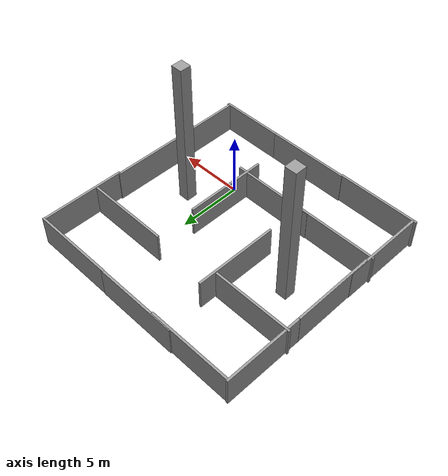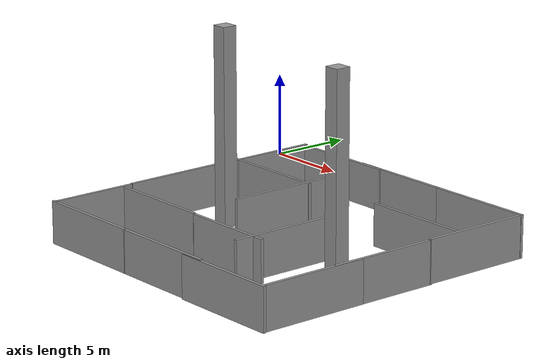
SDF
<?xml version='1.0'?>
<sdf version='1.7'>
  <model name='office1.world'>
    <link name='link_2'>
      <inertial>
        <mass>13.1278</mass>
        <inertia>
          <ixx>189.63</ixx>
          <ixy>0</ixy>
          <ixz>0</ixz>
          <iyy>189.63</iyy>
          <iyz>0</iyz>
          <izz>2.18797</izz>
        </inertia>
        <pose>0 0 0 0 -0 0</pose>
      </inertial>
      <pose>-6.1173 0.626969 0.350923 0 -0 0</pose>
      <self_collide>0</self_collide>
      <enable_wind>0</enable_wind>
      <kinematic>0</kinematic>
      <visual name='visual'>
        <pose>0 0 0 0 -0 0</pose>
        <geometry>
          <box>
            <size>1 1 13.1278</size>
          </box>
        </geometry>
        <material>
          <lighting>1</lighting>
          <script>
            <uri>file://media/materials/scripts/gazebo.material</uri>
            <name>Gazebo/Grey</name>
          </script>
          <shader type='pixel'/>
        </material>
        <transparency>0</transparency>
        <cast_shadows>1</cast_shadows>
      </visual>
      <collision name='collision'>
        <laser_retro>0</laser_retro>
        <max_contacts>10</max_contacts>
        <pose>0 0 0 0 -0 0</pose>
        <geometry>
          <box>
            <size>1 1 13.1278</size>
          </box>
        </geometry>
        <surface>
          <friction>
            <ode>
              <mu>1</mu>
              <mu2>1</mu2>
              <fdir1>0 0 0</fdir1>
              <slip1>0</slip1>
              <slip2>0</slip2>
            </ode>
            <torsional>
              <coefficient>1</coefficient>
              <patch_radius>0</patch_radius>
              <surface_radius>0</surface_radius>
              <use_patch_radius>1</use_patch_radius>
              <ode>
                <slip>0</slip>
              </ode>
            </torsional>
          </friction>
          <bounce>
            <restitution_coefficient>0</restitution_coefficient>
            <threshold>1e+06</threshold>
          </bounce>
          <contact>
            <collide_without_contact>0</collide_without_contact>
            <collide_without_contact_bitmask>1</collide_without_contact_bitmask>
            <collide_bitmask>1</collide_bitmask>
            <ode>
              <soft_cfm>0</soft_cfm>
              <soft_erp>0.2</soft_erp>
              <kp>1e+13</kp>
              <kd>1</kd>
              <max_vel>0.01</max_vel>
              <min_depth>0</min_depth>
            </ode>
            <bullet>
              <split_impulse>1</split_impulse>
              <split_impulse_penetration_threshold>-0.01</split_impulse_penetration_threshold>
              <soft_cfm>0</soft_cfm>
              <soft_erp>0.2</soft_erp>
              <kp>1e+13</kp>
              <kd>1</kd>
            </bullet>
          </contact>
        </surface>
      </collision>
    </link>
    <link name='link_3'>
      <inertial>
        <mass>13.3473</mass>
        <inertia>
          <ixx>199.264</ixx>
          <ixy>0</ixy>
          <ixz>0</ixz>
          <iyy>199.264</iyy>
          <iyz>0</iyz>
          <izz>2.22455</izz>
        </inertia>
        <pose>0 0 0 0 -0 0</pose>
      </inertial>
      <pose>6.82956 -1.30287 0.350923 0 -0 0</pose>
      <self_collide>0</self_collide>
      <enable_wind>0</enable_wind>
      <kinematic>0</kinematic>
      <visual name='visual'>
        <pose>0 0 0 0 -0 0</pose>
        <geometry>
          <box>
            <size>1 1 13.3473</size>
          </box>
        </geometry>
        <material>
          <lighting>1</lighting>
          <script>
            <uri>file://media/materials/scripts/gazebo.material</uri>
            <name>Gazebo/Grey</name>
          </script>
          <shader type='pixel'/>
        </material>
        <transparency>0</transparency>
        <cast_shadows>1</cast_shadows>
      </visual>
      <collision name='collision'>
        <laser_retro>0</laser_retro>
        <max_contacts>10</max_contacts>
        <pose>0 0 0 0 -0 0</pose>
        <geometry>
          <box>
            <size>1 1 13.3473</size>
          </box>
        </geometry>
        <surface>
          <friction>
            <ode>
              <mu>1</mu>
              <mu2>1</mu2>
              <fdir1>0 0 0</fdir1>
              <slip1>0</slip1>
              <slip2>0</slip2>
            </ode>
            <torsional>
              <coefficient>1</coefficient>
              <patch_radius>0</patch_radius>
              <surface_radius>0</surface_radius>
              <use_patch_radius>1</use_patch_radius>
              <ode>
                <slip>0</slip>
              </ode>
            </torsional>
          </friction>
          <bounce>
            <restitution_coefficient>0</restitution_coefficient>
            <threshold>1e+06</threshold>
          </bounce>
          <contact>
            <collide_without_contact>0</collide_without_contact>
            <collide_without_contact_bitmask>1</collide_without_contact_bitmask>
            <collide_bitmask>1</collide_bitmask>
            <ode>
              <soft_cfm>0</soft_cfm>
              <soft_erp>0.2</soft_erp>
              <kp>1e+13</kp>
              <kd>1</kd>
              <max_vel>0.01</max_vel>
              <min_depth>0</min_depth>
            </ode>
            <bullet>
              <split_impulse>1</split_impulse>
              <split_impulse_penetration_threshold>-0.01</split_impulse_penetration_threshold>
              <soft_cfm>0</soft_cfm>
              <soft_erp>0.2</soft_erp>
              <kp>1e+13</kp>
              <kd>1</kd>
            </bullet>
          </contact>
        </surface>
      </collision>
    </link>
    <model name='grey_wall'>
      <static>1</static>
      <link name='link'>
        <pose>0 0 1.4 0 -0 0</pose>
        <collision name='collision'>
          <geometry>
            <box>
              <size>7.5 0.2 2.8</size>
            </box>
          </geometry>
          <max_contacts>10</max_contacts>
          <surface>
            <contact>
              <ode/>
            </contact>
            <bounce/>
            <friction>
              <torsional>
                <ode/>
              </torsional>
              <ode/>
            </friction>
          </surface>
        </collision>
        <visual name='visual'>
          <cast_shadows>0</cast_shadows>
          <geometry>
            <box>
              <size>7.5 0.2 2.8</size>
            </box>
          </geometry>
          <material>
            <script>
              <uri>model://grey_wall/materials/scripts</uri>
              <uri>model://grey_wall/materials/textures</uri>
              <name>vrc/grey_wall</name>
            </script>
          </material>
        </visual>
        <self_collide>0</self_collide>
        <enable_wind>0</enable_wind>
        <kinematic>0</kinematic>
      </link>
      <pose>-5.86547 10.2545 -6.18636 0 -0 0</pose>
    </model>
    <model name='grey_wall_0'>
      <static>1</static>
      <link name='link'>
        <pose>0 0 1.4 0 -0 0</pose>
        <collision name='collision'>
          <geometry>
            <box>
              <size>7.5 0.2 2.8</size>
            </box>
          </geometry>
          <max_contacts>10</max_contacts>
          <surface>
            <contact>
              <ode/>
            </contact>
            <bounce/>
            <friction>
              <torsional>
                <ode/>
              </torsional>
              <ode/>
            </friction>
          </surface>
        </collision>
        <visual name='visual'>
          <cast_shadows>0</cast_shadows>
          <geometry>
            <box>
              <size>7.5 0.2 2.8</size>
            </box>
          </geometry>
          <material>
            <script>
              <uri>model://grey_wall/materials/scripts</uri>
              <uri>model://grey_wall/materials/textures</uri>
              <name>vrc/grey_wall</name>
            </script>
          </material>
        </visual>
        <self_collide>0</self_collide>
        <enable_wind>0</enable_wind>
        <kinematic>0</kinematic>
      </link>
      <pose>-0.359473 10.3404 -6.19557 0 -0 0</pose>
    </model>
    <model name='grey_wall_1'>
      <static>1</static>
      <link name='link'>
        <pose>0 0 1.4 0 -0 0</pose>
        <collision name='collision'>
          <geometry>
            <box>
              <size>7.5 0.2 2.8</size>
            </box>
          </geometry>
          <max_contacts>10</max_contacts>
          <surface>
            <contact>
              <ode/>
            </contact>
            <bounce/>
            <friction>
              <torsional>
                <ode/>
              </torsional>
              <ode/>
            </friction>
          </surface>
        </collision>
        <visual name='visual'>
          <cast_shadows>0</cast_shadows>
          <geometry>
            <box>
              <size>7.5 0.2 2.8</size>
            </box>
          </geometry>
          <material>
            <script>
              <uri>model://grey_wall/materials/scripts</uri>
              <uri>model://grey_wall/materials/textures</uri>
              <name>vrc/grey_wall</name>
            </script>
          </material>
        </visual>
        <self_collide>0</self_collide>
        <enable_wind>0</enable_wind>
        <kinematic>0</kinematic>
      </link>
      <pose>6.95608 10.3134 -6.18871 0 -0 0</pose>
    </model>
    <model name='grey_wall_10'>
      <static>1</static>
      <link name='link'>
        <pose>0 0 1.4 0 -0 0</pose>
        <collision name='collision'>
          <geometry>
            <box>
              <size>7.5 0.2 2.8</size>
            </box>
          </geometry>
          <max_contacts>10</max_contacts>
          <surface>
            <contact>
              <ode/>
            </contact>
            <bounce/>
            <friction>
              <torsional>
                <ode/>
              </torsional>
              <ode/>
            </friction>
          </surface>
        </collision>
        <visual name='visual'>
          <cast_shadows>0</cast_shadows>
          <geometry>
            <box>
              <size>7.5 0.2 2.8</size>
            </box>
          </geometry>
          <material>
            <script>
              <uri>model://grey_wall/materials/scripts</uri>
              <uri>model://grey_wall/materials/textures</uri>
              <name>vrc/grey_wall</name>
            </script>
          </material>
        </visual>
        <self_collide>0</self_collide>
        <enable_wind>0</enable_wind>
        <kinematic>0</kinematic>
      </link>
      <pose>6.88242 -9.91203 -6.27613 0 -0 0</pose>
    </model>
    <model name='grey_wall_11'>
      <static>1</static>
      <link name='link'>
        <pose>0 0 1.4 0 -0 0</pose>
        <collision name='collision'>
          <geometry>
            <box>
              <size>7.5 0.2 2.8</size>
            </box>
          </geometry>
          <max_contacts>10</max_contacts>
          <surface>
            <contact>
              <ode/>
            </contact>
            <bounce/>
            <friction>
              <torsional>
                <ode/>
              </torsional>
              <ode/>
            </friction>
          </surface>
        </collision>
        <visual name='visual'>
          <cast_shadows>0</cast_shadows>
          <geometry>
            <box>
              <size>7.5 0.2 2.8</size>
            </box>
          </geometry>
          <material>
            <script>
              <uri>model://grey_wall/materials/scripts</uri>
              <uri>model://grey_wall/materials/textures</uri>
              <name>vrc/grey_wall</name>
            </script>
          </material>
        </visual>
        <self_collide>0</self_collide>
        <enable_wind>0</enable_wind>
        <kinematic>0</kinematic>
      </link>
      <pose>-6.2541 4.57267 -6.1435 0 -0 0</pose>
    </model>
    <model name='grey_wall_12'>
      <static>1</static>
      <link name='link'>
        <pose>0 0 1.4 0 -0 0</pose>
        <collision name='collision'>
          <geometry>
            <box>
              <size>7.5 0.2 2.8</size>
            </box>
          </geometry>
          <max_contacts>10</max_contacts>
          <surface>
            <contact>
              <ode/>
            </contact>
            <bounce/>
            <friction>
              <torsional>
                <ode/>
              </torsional>
              <ode/>
            </friction>
          </surface>
        </collision>
        <visual name='visual'>
          <cast_shadows>0</cast_shadows>
          <geometry>
            <box>
              <size>7.5 0.2 2.8</size>
            </box>
          </geometry>
          <material>
            <script>
              <uri>model://grey_wall/materials/scripts</uri>
              <uri>model://grey_wall/materials/textures</uri>
              <name>vrc/grey_wall</name>
            </script>
          </material>
        </visual>
        <self_collide>0</self_collide>
        <enable_wind>0</enable_wind>
        <kinematic>0</kinematic>
      </link>
      <pose>-6.24152 -4.72345 -6.21922 0 -0 0</pose>
    </model>
    <model name='grey_wall_13'>
      <static>1</static>
      <link name='link'>
        <pose>0 0 1.4 0 -0 0</pose>
        <collision name='collision'>
          <geometry>
            <box>
              <size>7.5 0.2 2.8</size>
            </box>
          </geometry>
          <max_contacts>10</max_contacts>
          <surface>
            <contact>
              <ode/>
            </contact>
            <bounce/>
            <friction>
              <torsional>
                <ode/>
              </torsional>
              <ode/>
            </friction>
          </surface>
        </collision>
        <visual name='visual'>
          <cast_shadows>0</cast_shadows>
          <geometry>
            <box>
              <size>7.5 0.2 2.8</size>
            </box>
          </geometry>
          <material>
            <script>
              <uri>model://grey_wall/materials/scripts</uri>
              <uri>model://grey_wall/materials/textures</uri>
              <name>vrc/grey_wall</name>
            </script>
          </material>
        </visual>
        <self_collide>0</self_collide>
        <enable_wind>0</enable_wind>
        <kinematic>0</kinematic>
      </link>
      <pose>-2.66308 2.44192 -6.04539 0 0 1.56711</pose>
    </model>
    <model name='grey_wall_14'>
      <static>1</static>
      <link name='link'>
        <pose>0 0 1.4 0 -0 0</pose>
        <collision name='collision'>
          <geometry>
            <box>
              <size>7.5 0.2 2.8</size>
            </box>
          </geometry>
          <max_contacts>10</max_contacts>
          <surface>
            <contact>
              <ode/>
            </contact>
            <bounce/>
            <friction>
              <torsional>
                <ode/>
              </torsional>
              <ode/>
            </friction>
          </surface>
        </collision>
        <visual name='visual'>
          <cast_shadows>0</cast_shadows>
          <geometry>
            <box>
              <size>7.5 0.2 2.8</size>
            </box>
          </geometry>
          <material>
            <script>
              <uri>model://grey_wall/materials/scripts</uri>
              <uri>model://grey_wall/materials/textures</uri>
              <name>vrc/grey_wall</name>
            </script>
          </material>
        </visual>
        <self_collide>0</self_collide>
        <enable_wind>0</enable_wind>
        <kinematic>0</kinematic>
      </link>
      <pose>0.27983 -4.70476 -6.27093 0 -0 0</pose>
    </model>
    <model name='grey_wall_15'>
      <static>1</static>
      <link name='link'>
        <pose>0 0 1.4 0 -0 0</pose>
        <collision name='collision'>
          <geometry>
            <box>
              <size>7.5 0.2 2.8</size>
            </box>
          </geometry>
          <max_contacts>10</max_contacts>
          <surface>
            <contact>
              <ode/>
            </contact>
            <bounce/>
            <friction>
              <torsional>
                <ode/>
              </torsional>
              <ode/>
            </friction>
          </surface>
        </collision>
        <visual name='visual'>
          <cast_shadows>0</cast_shadows>
          <geometry>
            <box>
              <size>7.5 0.2 2.8</size>
            </box>
          </geometry>
          <material>
            <script>
              <uri>model://grey_wall/materials/scripts</uri>
              <uri>model://grey_wall/materials/textures</uri>
              <name>vrc/grey_wall</name>
            </script>
          </material>
        </visual>
        <self_collide>0</self_collide>
        <enable_wind>0</enable_wind>
        <kinematic>0</kinematic>
      </link>
      <pose>6.73809 5.20823 -6.24553 0 -0 0</pose>
    </model>
    <model name='grey_wall_16'>
      <static>1</static>
      <link name='link'>
        <pose>0 0 1.4 0 -0 0</pose>
        <collision name='collision'>
          <geometry>
            <box>
              <size>7.5 0.2 2.8</size>
            </box>
          </geometry>
          <max_contacts>10</max_contacts>
          <surface>
            <contact>
              <ode/>
            </contact>
            <bounce/>
            <friction>
              <torsional>
                <ode/>
              </torsional>
              <ode/>
            </friction>
          </surface>
        </collision>
        <visual name='visual'>
          <cast_shadows>0</cast_shadows>
          <geometry>
            <box>
              <size>7.5 0.2 2.8</size>
            </box>
          </geometry>
          <material>
            <script>
              <uri>model://grey_wall/materials/scripts</uri>
              <uri>model://grey_wall/materials/textures</uri>
              <name>vrc/grey_wall</name>
            </script>
          </material>
        </visual>
        <self_collide>0</self_collide>
        <enable_wind>0</enable_wind>
        <kinematic>0</kinematic>
      </link>
      <pose>3.21535 -2.32329 -6.23631 0 0 -1.57341</pose>
    </model>
    <model name='grey_wall_2'>
      <static>1</static>
      <link name='link'>
        <pose>0 0 1.4 0 -0 0</pose>
        <collision name='collision'>
          <geometry>
            <box>
              <size>7.5 0.2 2.8</size>
            </box>
          </geometry>
          <max_contacts>10</max_contacts>
          <surface>
            <contact>
              <ode/>
            </contact>
            <bounce/>
            <friction>
              <torsional>
                <ode/>
              </torsional>
              <ode/>
            </friction>
          </surface>
        </collision>
        <visual name='visual'>
          <cast_shadows>0</cast_shadows>
          <geometry>
            <box>
              <size>7.5 0.2 2.8</size>
            </box>
          </geometry>
          <material>
            <script>
              <uri>model://grey_wall/materials/scripts</uri>
              <uri>model://grey_wall/materials/textures</uri>
              <name>vrc/grey_wall</name>
            </script>
          </material>
        </visual>
        <self_collide>0</self_collide>
        <enable_wind>0</enable_wind>
        <kinematic>0</kinematic>
      </link>
      <pose>10.5617 6.53837 -6.20088 0 -0 -1.57719</pose>
    </model>
    <model name='grey_wall_3'>
      <static>1</static>
      <link name='link'>
        <pose>0 0 1.4 0 -0 0</pose>
        <collision name='collision'>
          <geometry>
            <box>
              <size>7.5 0.2 2.8</size>
            </box>
          </geometry>
          <max_contacts>10</max_contacts>
          <surface>
            <contact>
              <ode/>
            </contact>
            <bounce/>
            <friction>
              <torsional>
                <ode/>
              </torsional>
              <ode/>
            </friction>
          </surface>
        </collision>
        <visual name='visual'>
          <cast_shadows>0</cast_shadows>
          <geometry>
            <box>
              <size>7.5 0.2 2.8</size>
            </box>
          </geometry>
          <material>
            <script>
              <uri>model://grey_wall/materials/scripts</uri>
              <uri>model://grey_wall/materials/textures</uri>
              <name>vrc/grey_wall</name>
            </script>
          </material>
        </visual>
        <self_collide>0</self_collide>
        <enable_wind>0</enable_wind>
        <kinematic>0</kinematic>
      </link>
      <pose>10.4415 -0.768875 -6.27865 0 -0 1.56273</pose>
    </model>
    <model name='grey_wall_4'>
      <static>1</static>
      <link name='link'>
        <pose>0 0 1.4 0 -0 0</pose>
        <collision name='collision'>
          <geometry>
            <box>
              <size>7.5 0.2 2.8</size>
            </box>
          </geometry>
          <max_contacts>10</max_contacts>
          <surface>
            <contact>
              <ode/>
            </contact>
            <bounce/>
            <friction>
              <torsional>
                <ode/>
              </torsional>
              <ode/>
            </friction>
          </surface>
        </collision>
        <visual name='visual'>
          <cast_shadows>0</cast_shadows>
          <geometry>
            <box>
              <size>7.5 0.2 2.8</size>
            </box>
          </geometry>
          <material>
            <script>
              <uri>model://grey_wall/materials/scripts</uri>
              <uri>model://grey_wall/materials/textures</uri>
              <name>vrc/grey_wall</name>
            </script>
          </material>
        </visual>
        <self_collide>0</self_collide>
        <enable_wind>0</enable_wind>
        <kinematic>0</kinematic>
      </link>
      <pose>10.4276 -6.20286 -6.28873 0 0 1.57014</pose>
    </model>
    <model name='grey_wall_5'>
      <static>1</static>
      <link name='link'>
        <pose>0 0 1.4 0 -0 0</pose>
        <collision name='collision'>
          <geometry>
            <box>
              <size>7.5 0.2 2.8</size>
            </box>
          </geometry>
          <max_contacts>10</max_contacts>
          <surface>
            <contact>
              <ode/>
            </contact>
            <bounce/>
            <friction>
              <torsional>
                <ode/>
              </torsional>
              <ode/>
            </friction>
          </surface>
        </collision>
        <visual name='visual'>
          <cast_shadows>0</cast_shadows>
          <geometry>
            <box>
              <size>7.5 0.2 2.8</size>
            </box>
          </geometry>
          <material>
            <script>
              <uri>model://grey_wall/materials/scripts</uri>
              <uri>model://grey_wall/materials/textures</uri>
              <name>vrc/grey_wall</name>
            </script>
          </material>
        </visual>
        <self_collide>0</self_collide>
        <enable_wind>0</enable_wind>
        <kinematic>0</kinematic>
      </link>
      <pose>-9.74149 6.66516 -6.1527 0 -0 1.57011</pose>
    </model>
    <model name='grey_wall_6'>
      <static>1</static>
      <link name='link'>
        <pose>0 0 1.4 0 -0 0</pose>
        <collision name='collision'>
          <geometry>
            <box>
              <size>7.5 0.2 2.8</size>
            </box>
          </geometry>
          <max_contacts>10</max_contacts>
          <surface>
            <contact>
              <ode/>
            </contact>
            <bounce/>
            <friction>
              <torsional>
                <ode/>
              </torsional>
              <ode/>
            </friction>
          </surface>
        </collision>
        <visual name='visual'>
          <cast_shadows>0</cast_shadows>
          <geometry>
            <box>
              <size>7.5 0.2 2.8</size>
            </box>
          </geometry>
          <material>
            <script>
              <uri>model://grey_wall/materials/scripts</uri>
              <uri>model://grey_wall/materials/textures</uri>
              <name>vrc/grey_wall</name>
            </script>
          </material>
        </visual>
        <self_collide>0</self_collide>
        <enable_wind>0</enable_wind>
        <kinematic>0</kinematic>
      </link>
      <pose>-9.74095 -0.423524 -6.12108 0 -0 1.57499</pose>
    </model>
    <model name='grey_wall_7'>
      <static>1</static>
      <link name='link'>
        <pose>0 0 1.4 0 -0 0</pose>
        <collision name='collision'>
          <geometry>
            <box>
              <size>7.5 0.2 2.8</size>
            </box>
          </geometry>
          <max_contacts>10</max_contacts>
          <surface>
            <contact>
              <ode/>
            </contact>
            <bounce/>
            <friction>
              <torsional>
                <ode/>
              </torsional>
              <ode/>
            </friction>
          </surface>
        </collision>
        <visual name='visual'>
          <cast_shadows>0</cast_shadows>
          <geometry>
            <box>
              <size>7.5 0.2 2.8</size>
            </box>
          </geometry>
          <material>
            <script>
              <uri>model://grey_wall/materials/scripts</uri>
              <uri>model://grey_wall/materials/textures</uri>
              <name>vrc/grey_wall</name>
            </script>
          </material>
        </visual>
        <self_collide>0</self_collide>
        <enable_wind>0</enable_wind>
        <kinematic>0</kinematic>
      </link>
      <pose>-9.76328 -6.13102 -6.15906 0 -0 -1.57227</pose>
    </model>
    <model name='grey_wall_8'>
      <static>1</static>
      <link name='link'>
        <pose>0 0 1.4 0 -0 0</pose>
        <collision name='collision'>
          <geometry>
            <box>
              <size>7.5 0.2 2.8</size>
            </box>
          </geometry>
          <max_contacts>10</max_contacts>
          <surface>
            <contact>
              <ode/>
            </contact>
            <bounce/>
            <friction>
              <torsional>
                <ode/>
              </torsional>
              <ode/>
            </friction>
          </surface>
        </collision>
        <visual name='visual'>
          <cast_shadows>0</cast_shadows>
          <geometry>
            <box>
              <size>7.5 0.2 2.8</size>
            </box>
          </geometry>
          <material>
            <script>
              <uri>model://grey_wall/materials/scripts</uri>
              <uri>model://grey_wall/materials/textures</uri>
              <name>vrc/grey_wall</name>
            </script>
          </material>
        </visual>
        <self_collide>0</self_collide>
        <enable_wind>0</enable_wind>
        <kinematic>0</kinematic>
      </link>
      <pose>-6.31444 -9.92451 -6.18835 0 -0 0</pose>
    </model>
    <model name='grey_wall_9'>
      <static>1</static>
      <link name='link'>
        <pose>0 0 1.4 0 -0 0</pose>
        <collision name='collision'>
          <geometry>
            <box>
              <size>7.5 0.2 2.8</size>
            </box>
          </geometry>
          <max_contacts>10</max_contacts>
          <surface>
            <contact>
              <ode/>
            </contact>
            <bounce/>
            <friction>
              <torsional>
                <ode/>
              </torsional>
              <ode/>
            </friction>
          </surface>
        </collision>
        <visual name='visual'>
          <cast_shadows>0</cast_shadows>
          <geometry>
            <box>
              <size>7.5 0.2 2.8</size>
            </box>
          </geometry>
          <material>
            <script>
              <uri>model://grey_wall/materials/scripts</uri>
              <uri>model://grey_wall/materials/textures</uri>
              <name>vrc/grey_wall</name>
            </script>
          </material>
        </visual>
        <self_collide>0</self_collide>
        <enable_wind>0</enable_wind>
        <kinematic>0</kinematic>
      </link>
      <pose>1.07683 -9.87408 -6.22201 0 -0 0</pose>
    </model>
    <static>0</static>
    <allow_auto_disable>1</allow_auto_disable>
  </model>
</sdf>
